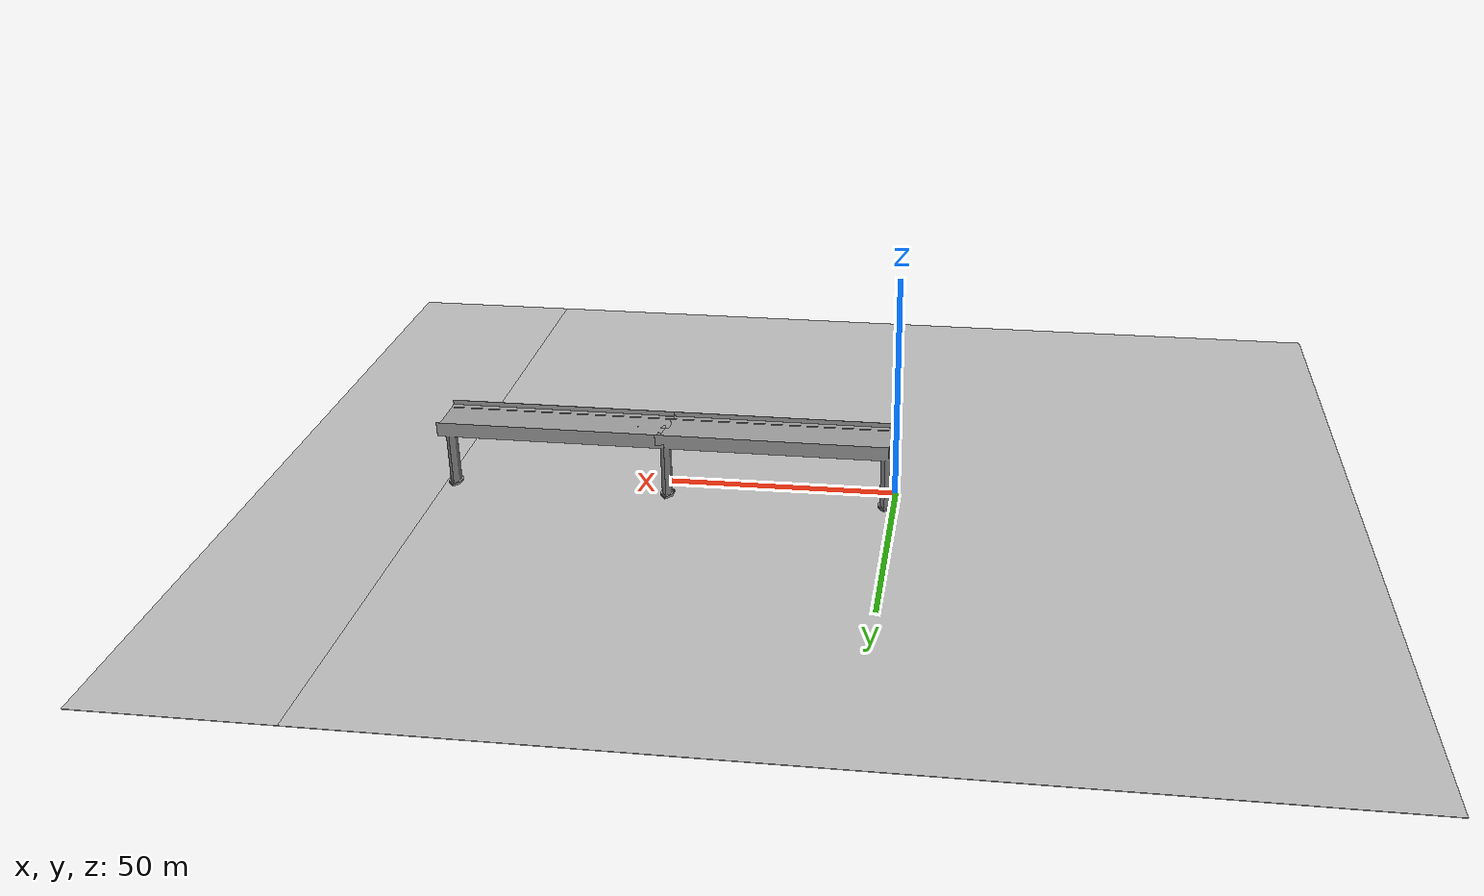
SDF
<sdf version="1.6">
 <world name="default">
  <include><uri>model://sun</uri></include>
  <include><uri>model://concrete_plane</uri></include>
  <include><uri>model://concrete_plane</uri><pose>40 0 0 0 0 0</pose></include>
  <include><uri>model://box_actu</uri><pose>1 0 0 0 0 0</pose></include>
  <include><uri>model://deungsun_bridge</uri><pose>0 30 0 1.570796 0 0</pose></include>
  <include><uri>model://deungsun_bridge</uri><pose>48 30 0 1.570796 0 0</pose></include>
  <physics name="default_physics" default="0" type="ode">
   <gravity>0 0 0</gravity>
   <ode>
    <solver>
     <type>quick</type>
     <iters>10</iters>
     <sor>1.3</sor>
     <use_dynamic_moi_rescaling>0</use_dynamic_moi_rescaling>
    </solver>
    <constraints>
     <cfm>0</cfm>
     <erp>0.2</erp>
     <contact_max_correcting_vel>100</contact_max_correcting_vel>
     <contact_surface_layer>0.001</contact_surface_layer>
    </constraints>
   </ode>
   <max_step_size>0.004</max_step_size>
   <real_time_factor>1</real_time_factor>
   <real_time_update_rate>250</real_time_update_rate>
   <magnetic_field>6.0e-6 2.3e-5 -4.2e-5</magnetic_field>
  </physics>
  <plugin name="ros_link_attacher_plugin" filename="libgazebo_ros_link_attacher.so"/>
 </world>
</sdf>

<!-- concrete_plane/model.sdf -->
<sdf version="1.5">
  <model name="concrete_plane">
    <static>true</static>
    <link name="link">
      <collision name="collision">
        <geometry>
          <box>
            <size>200 200 .1</size>
          </box>
        </geometry>
      </collision>
      <visual name="visual">
        <cast_shadows>false</cast_shadows>
        <geometry>
          <box>
            <size>200 200 .1</size>
          </box>
        </geometry>
        <material>
          <script>
            <uri>model://concrete_plane/materials/scripts</uri>
            <uri>model://concrete_plane/materials/textures</uri>
            <name>vrc/concrete</name>
          </script>
        </material>
      </visual>
    </link>
  </model>
</sdf>

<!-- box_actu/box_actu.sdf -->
<sdf version='1.6'>
  <!-- temporal tester-->
  <model name="box">
    <pose>0 0 0 0 0 0</pose>
    <link name="box_link">
      <pose>0 0 0 0 0 0</pose>
      <inertial>
        <mass>300</mass>
        <inertia>
          <ixx>1.25</ixx>
          <ixy>0</ixy>
          <ixz>0</ixz>
          <iyy>1.25</iyy>
          <iyz>0</iyz>
          <izz>1.25</izz>
        </inertia>
      </inertial>
      <visual name="box_visual">
        <pose>0 0 0.25 0 0 0</pose>
        <geometry>
          <box>
            <size>0.5 0.5 0.5</size>
          </box>
        </geometry>
      </visual>
      <collision name="box_collision">
        <pose>0 0 0.25 0 0 0</pose>
        <geometry>
          <box>
            <size>0.5 0.5 0.5</size>
          </box>
        </geometry>
      </collision>
    </link>
    <link name="actuator_l">
      <pose>0.25 0 0.25 0 0 0</pose>
    </link>
    <link name="actuator_r">
      <pose>-0.25 0 0.25  0 0 0</pose>
    </link>
    <link name="actuator_f">
      <pose>0 0.25 0.25 0 0 0</pose>
    </link>
    <link name="actuator_b">
      <pose>0 -0.25 0.25 0 0 0</pose>
    </link>
    <link name="actuator_u">
      <pose>0 0 0.5 0 0 0</pose>
    </link>
    <link name="actuator_d">
      <pose>0 0 0 0 0 0</pose>
    </link>
    <joint name="joint_l" type="revolute">
      <parent>box_link</parent>
      <child>actuator_l</child>
      <pose>0 0 0 0 0 0</pose>
      <axis>
        <xyz>1 0 0</xyz>
      </axis>
    </joint>
    <joint name="joint_r" type="revolute">
      <parent>box_link</parent>
      <child>actuator_r</child>
      <pose>0 0 0 0 0 0</pose>
      <axis>
        <xyz>-1 0 0</xyz>
      </axis>
    </joint>
    <joint name="joint_f" type="revolute">
      <parent>box_link</parent>
      <child>actuator_f</child>
      <pose>0 0 0 0 0 0</pose>
      <axis>
        <xyz>0 1 0</xyz>
      </axis>
    </joint>
    <joint name="joint_b" type="revolute">
      <parent>box_link</parent>
      <child>actuator_b</child>
      <pose>0 0 0 0 0 0</pose>
      <axis>
        <xyz>0 -1 0</xyz>
      </axis>
    </joint>
    <joint name="joint_u" type="revolute">
      <parent>box_link</parent>
      <child>actuator_u</child>
      <pose>0 0 0 0 0 0</pose>
      <axis>
        <xyz>0 0 1</xyz>
      </axis>
    </joint>
    <joint name="joint_d" type="revolute">
      <parent>box_link</parent>
      <child>actuator_d</child>
      <pose>0 0 0 0 0 0</pose>
      <axis>
        <xyz>0 0 -1</xyz>
      </axis>
    </joint>
  </model>
</sdf>

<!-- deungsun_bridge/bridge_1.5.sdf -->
<sdf version='1.5'>
	<model name='deungsun_bridge'>

		<static>true</static>

		<link name='link'>
				<visual name='visual'>
				<geometry>
					<mesh>
						<uri>model://deungsun_bridge/meshes/deungsun_bridge_simple.dae</uri>
					</mesh>
				</geometry>
				<material>
					<script>
						<uri>model://deungsun_bridge/materials/scripts</uri>
						<uri>model://deungsun_bridge/materials/textures</uri>
						<name>vrc/concrete</name>
					</script>
				</material>
			</visual>
			<collision name='collision'>
				<geometry>
					<mesh>
						<uri>model://deungsun_bridge/meshes/deungsun_bridge_simple.dae</uri>
					</mesh>
				</geometry>
				<material>
					<script>
						<uri>model://deungsun_bridge/materials/scripts</uri>
						<uri>model://deungsun_bridge/materials/textures</uri>
						<name>vrc/concrete</name>
					</script>
				</material>
			</collision>
		</link>

	</model>
</sdf>
